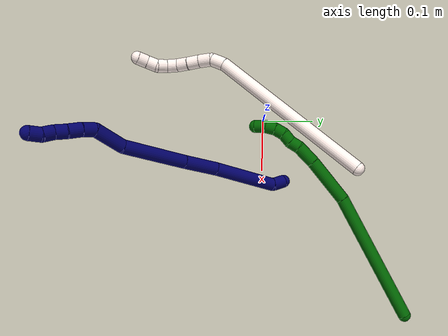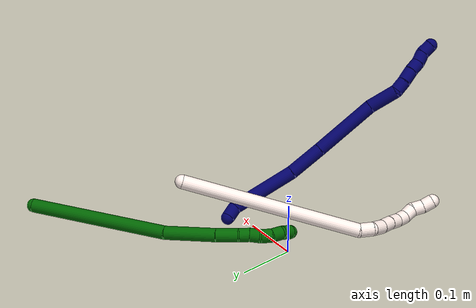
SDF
<sdf version="1.7">
 <world name="default">
  <model name="photoneo_s_sensor">
   <static>1</static>
   <pose>0 0 2 1.57079 1.57079 3.14159</pose>
   <link name="link">
    <inertial><mass>0.1</mass></inertial>
    <sensor name="sensor" type="depth">
     <update_rate>30</update_rate>
     <camera>
      <horizontal_fov>1.22</horizontal_fov>
      <image><width>1920</width><height>1200</height><format>B8G8R8</format></image>
      <clip><near>0.1</near><far>4</far></clip>
      <depth_camera><output>points</output></depth_camera>
     </camera>
     <plugin name="camera_plugin" filename="libgazebo_ros_depth_camera.so">
      <baseline>0.2</baseline>
      <alwaysOn>1</alwaysOn>
      <updateRate>0.0</updateRate>
      <cameraName>camera_ir</cameraName>
      <imageTopicName>/camera/color/image_raw</imageTopicName>
      <cameraInfoTopicName>/camera/color/camera_info</cameraInfoTopicName>
      <depthImageTopicName>/camera/depth/image_raw</depthImageTopicName>
      <depthImageCameraInfoTopicName>/camera/depth/camera_info</depthImageCameraInfoTopicName>
      <pointCloudTopicName>/camera/depth/points</pointCloudTopicName>
      <frameName>fr_optical</frameName>
      <pointCloudCutoff>0.1</pointCloudCutoff>
      <pointCloudCutoffMax>2.0</pointCloudCutoffMax>
      <distortionK1>0</distortionK1>
      <distortionK2>0</distortionK2>
      <distortionK3>0</distortionK3>
      <distortionT1>0</distortionT1>
      <distortionT2>0</distortionT2>
      <CxPrime>0</CxPrime>
      <Cx>0</Cx>
      <Cy>0</Cy>
      <focalLength>0</focalLength>
      <hackBaseline>0</hackBaseline>
     </plugin>
    </sensor>
   </link>
  </model>
  <model name="bin">
   <static>1</static>
   <link name="bottom">
    <collision name="collision-bottom">
     <pose>0 0 -0.01 0 -0 0</pose>
     <geometry><box><size>0.8 0.6 0.02</size></box></geometry>
     <surface>
      <friction><ode><mu>100</mu><mu2>100</mu2></ode></friction>
      <contact><collide_bitmask>65535</collide_bitmask></contact>
     </surface>
    </collision>
   </link>
   <link name="west_wall">
    <collision name="collision-west_wall">
     <pose>-0.41 0 0.1 0 -0 0</pose>
     <geometry><box><size>0.02 0.6 0.2</size></box></geometry>
     <surface>
      <friction><ode><mu>100</mu><mu2>100</mu2></ode></friction>
      <contact><collide_bitmask>65535</collide_bitmask></contact>
     </surface>
    </collision>
   </link>
   <link name="east_wall">
    <collision name="collision-east_wall">
     <pose>0.41 0 0.1 0 -0 0</pose>
     <geometry><box><size>0.02 0.6 0.2</size></box></geometry>
     <surface>
      <friction><ode><mu>100</mu><mu2>100</mu2></ode></friction>
      <contact><collide_bitmask>65535</collide_bitmask></contact>
     </surface>
    </collision>
   </link>
   <link name="south_wall">
    <collision name="collision-south_wall">
     <pose>0 -0.31 0.1 0 -0 0</pose>
     <geometry><box><size>0.8 0.02 0.2</size></box></geometry>
     <surface>
      <friction><ode><mu>100</mu><mu2>100</mu2></ode></friction>
      <contact><collide_bitmask>65535</collide_bitmask></contact>
     </surface>
    </collision>
   </link>
   <link name="north_wall">
    <collision name="collision-north_wall">
     <pose>0 0.31 0.1 0 -0 0</pose>
     <geometry><box><size>0.8 0.02 0.2</size></box></geometry>
     <surface>
      <friction><ode><mu>100</mu><mu2>100</mu2></ode></friction>
      <contact><collide_bitmask>65535</collide_bitmask></contact>
     </surface>
    </collision>
   </link>
  </model>
  <model name="6">
   <static>0</static>
   <link name="6">
    <collision name="collision-cylinder-e_1_1_4">
     <pose>-0.007949 0.004768 -0.132329 -3.10557 -0.059958 2.05987</pose>
     <geometry><cylinder><radius>0.0125</radius><length>0.265306</length></cylinder></geometry>
     <surface>
      <friction><ode><mu>1.16</mu><mu2>1.16</mu2><slip1>0</slip1><slip2>0</slip2></ode></friction>
      <contact><ode><kp>1e+06</kp><kd>1</kd><max_vel>0</max_vel><min_depth>0.001</min_depth></ode></contact>
     </surface>
    </collision>
    <visual name="visual-cylinder-e_1_1_4">
     <pose>-0.007949 0.004768 -0.132329 -3.10557 -0.059958 2.05987</pose>
     <geometry><cylinder><radius>0.0125</radius><length>0.265306</length></cylinder></geometry>
     <material><ambient>0 0.392157 0.003922 1</ambient></material>
    </visual>
    <collision name="collision-cylinder-e_2_4_5">
     <pose>-0.027053 0.00757 -0.310499 3.09871 -0.238501 -2.78741</pose>
     <geometry><cylinder><radius>0.0125</radius><length>0.094439</length></cylinder></geometry>
     <surface>
      <friction><ode><mu>1.16</mu><mu2>1.16</mu2><slip1>0</slip1><slip2>0</slip2></ode></friction>
      <contact><ode><kp>1e+06</kp><kd>1</kd><max_vel>0</max_vel><min_depth>0.001</min_depth></ode></contact>
     </surface>
    </collision>
    <visual name="visual-cylinder-e_2_4_5">
     <pose>-0.027053 0.00757 -0.310499 3.09871 -0.238501 -2.78741</pose>
     <geometry><cylinder><radius>0.0125</radius><length>0.094439</length></cylinder></geometry>
     <material><ambient>0 0.392157 0.003922 1</ambient></material>
    </visual>
    <collision name="collision-cylinder-e_3_5_6">
     <pose>-0.044095 0.003461 -0.375305 3.02916 -0.299141 -2.42677</pose>
     <geometry><cylinder><radius>0.0125</radius><length>0.039946</length></cylinder></geometry>
     <surface>
      <friction><ode><mu>1.16</mu><mu2>1.16</mu2><slip1>0</slip1><slip2>0</slip2></ode></friction>
      <contact><ode><kp>1e+06</kp><kd>1</kd><max_vel>0</max_vel><min_depth>0.001</min_depth></ode></contact>
     </surface>
    </collision>
    <visual name="visual-cylinder-e_3_5_6">
     <pose>-0.044095 0.003461 -0.375305 3.02916 -0.299141 -2.42677</pose>
     <geometry><cylinder><radius>0.0125</radius><length>0.039946</length></cylinder></geometry>
     <material><ambient>0 0.392157 0.003922 1</ambient></material>
    </visual>
    <collision name="collision-cylinder-e_4_6_7">
     <pose>-0.053967 -0.001955 -0.40286 2.77741 -0.409219 -1.69005</pose>
     <geometry><cylinder><radius>0.0125</radius><length>0.02004</length></cylinder></geometry>
     <surface>
      <friction><ode><mu>1.16</mu><mu2>1.16</mu2><slip1>0</slip1><slip2>0</slip2></ode></friction>
      <contact><ode><kp>1e+06</kp><kd>1</kd><max_vel>0</max_vel><min_depth>0.001</min_depth></ode></contact>
     </surface>
    </collision>
    <visual name="visual-cylinder-e_4_6_7">
     <pose>-0.053967 -0.001955 -0.40286 2.77741 -0.409219 -1.69005</pose>
     <geometry><cylinder><radius>0.0125</radius><length>0.02004</length></cylinder></geometry>
     <material><ambient>0 0.392157 0.003922 1</ambient></material>
    </visual>
    <collision name="collision-cylinder-e_5_7_8">
     <pose>-0.059712 -0.006402 -0.421255 3.02256 -0.176104 -1.9541</pose>
     <geometry><cylinder><radius>0.0125</radius><length>0.020061</length></cylinder></geometry>
     <surface>
      <friction><ode><mu>1.16</mu><mu2>1.16</mu2><slip1>0</slip1><slip2>0</slip2></ode></friction>
      <contact><ode><kp>1e+06</kp><kd>1</kd><max_vel>0</max_vel><min_depth>0.001</min_depth></ode></contact>
     </surface>
    </collision>
    <visual name="visual-cylinder-e_5_7_8">
     <pose>-0.059712 -0.006402 -0.421255 3.02256 -0.176104 -1.9541</pose>
     <geometry><cylinder><radius>0.0125</radius><length>0.020061</length></cylinder></geometry>
     <material><ambient>0 0.392157 0.003922 1</ambient></material>
    </visual>
    <collision name="collision-cylinder-e_6_8_9">
     <pose>-0.065665 -0.011068 -0.439514 2.74967 -0.430106 -1.66628</pose>
     <geometry><cylinder><radius>0.0125</radius><length>0.020127</length></cylinder></geometry>
     <surface>
      <friction><ode><mu>1.16</mu><mu2>1.16</mu2><slip1>0</slip1><slip2>0</slip2></ode></friction>
      <contact><ode><kp>1e+06</kp><kd>1</kd><max_vel>0</max_vel><min_depth>0.001</min_depth></ode></contact>
     </surface>
    </collision>
    <visual name="visual-cylinder-e_6_8_9">
     <pose>-0.065665 -0.011068 -0.439514 2.74967 -0.430106 -1.66628</pose>
     <geometry><cylinder><radius>0.0125</radius><length>0.020127</length></cylinder></geometry>
     <material><ambient>0 0.392157 0.003922 1</ambient></material>
    </visual>
    <collision name="collision-cylinder-e_7_9_10">
     <pose>-0.075984 -0.018987 -0.454529 2.54825 -0.658432 -1.68178</pose>
     <geometry><cylinder><radius>0.0125</radius><length>0.020011</length></cylinder></geometry>
     <surface>
      <friction><ode><mu>1.16</mu><mu2>1.16</mu2><slip1>0</slip1><slip2>0</slip2></ode></friction>
      <contact><ode><kp>1e+06</kp><kd>1</kd><max_vel>0</max_vel><min_depth>0.001</min_depth></ode></contact>
     </surface>
    </collision>
    <visual name="visual-cylinder-e_7_9_10">
     <pose>-0.075984 -0.018987 -0.454529 2.54825 -0.658432 -1.68178</pose>
     <geometry><cylinder><radius>0.0125</radius><length>0.020011</length></cylinder></geometry>
     <material><ambient>0 0.392157 0.003922 1</ambient></material>
    </visual>
    <collision name="collision-cylinder-e_8_10_2">
     <pose>-0.086731 -0.031048 -0.465671 2.11115 -0.479086 -0.814434</pose>
     <geometry><cylinder><radius>0.0125</radius><length>0.020069</length></cylinder></geometry>
     <surface>
      <friction><ode><mu>1.16</mu><mu2>1.16</mu2><slip1>0</slip1><slip2>0</slip2></ode></friction>
      <contact><ode><kp>1e+06</kp><kd>1</kd><max_vel>0</max_vel><min_depth>0.001</min_depth></ode></contact>
     </surface>
    </collision>
    <visual name="visual-cylinder-e_8_10_2">
     <pose>-0.086731 -0.031048 -0.465671 2.11115 -0.479086 -0.814434</pose>
     <geometry><cylinder><radius>0.0125</radius><length>0.020069</length></cylinder></geometry>
     <material><ambient>0 0.392157 0.003922 1</ambient></material>
    </visual>
    <collision name="collision-sphere-2">
     <pose>-0.091357 -0.038684 -0.470252 0 -0 0</pose>
     <geometry><sphere><radius>0.0125</radius></sphere></geometry>
     <surface>
      <friction><ode><mu>1.16</mu><mu2>1.16</mu2><slip1>0</slip1><slip2>0</slip2></ode></friction>
      <contact><ode><kp>1e+06</kp><kd>1</kd><max_vel>0</max_vel><min_depth>0.001</min_depth></ode></contact>
     </surface>
    </collision>
    <visual name="visual-sphere-2">
     <pose>-0.091357 -0.038684 -0.470252 0 -0 0</pose>
     <geometry><sphere><radius>0.0125</radius></sphere></geometry>
     <material><ambient>0 0.392157 0.003922 1</ambient></material>
    </visual>
    <collision name="collision-sphere-10">
     <pose>-0.082106 -0.023412 -0.46109 0 -0 0</pose>
     <geometry><sphere><radius>0.0125</radius></sphere></geometry>
     <surface>
      <friction><ode><mu>1.16</mu><mu2>1.16</mu2><slip1>0</slip1><slip2>0</slip2></ode></friction>
      <contact><ode><kp>1e+06</kp><kd>1</kd><max_vel>0</max_vel><min_depth>0.001</min_depth></ode></contact>
     </surface>
    </collision>
    <visual name="visual-sphere-10">
     <pose>-0.082106 -0.023412 -0.46109 0 -0 0</pose>
     <geometry><sphere><radius>0.0125</radius></sphere></geometry>
     <material><ambient>0 0.392157 0.003922 1</ambient></material>
    </visual>
    <collision name="collision-sphere-9">
     <pose>-0.069861 -0.014562 -0.447968 0 -0 0</pose>
     <geometry><sphere><radius>0.0125</radius></sphere></geometry>
     <surface>
      <friction><ode><mu>1.16</mu><mu2>1.16</mu2><slip1>0</slip1><slip2>0</slip2></ode></friction>
      <contact><ode><kp>1e+06</kp><kd>1</kd><max_vel>0</max_vel><min_depth>0.001</min_depth></ode></contact>
     </surface>
    </collision>
    <visual name="visual-sphere-9">
     <pose>-0.069861 -0.014562 -0.447968 0 -0 0</pose>
     <geometry><sphere><radius>0.0125</radius></sphere></geometry>
     <material><ambient>0 0.392157 0.003922 1</ambient></material>
    </visual>
    <collision name="collision-sphere-4">
     <pose>-0.015898 0.009536 -0.264658 0 -0 0</pose>
     <geometry><sphere><radius>0.0125</radius></sphere></geometry>
     <surface>
      <friction><ode><mu>1.16</mu><mu2>1.16</mu2><slip1>0</slip1><slip2>0</slip2></ode></friction>
      <contact><ode><kp>1e+06</kp><kd>1</kd><max_vel>0</max_vel><min_depth>0.001</min_depth></ode></contact>
     </surface>
    </collision>
    <visual name="visual-sphere-4">
     <pose>-0.015898 0.009536 -0.264658 0 -0 0</pose>
     <geometry><sphere><radius>0.0125</radius></sphere></geometry>
     <material><ambient>0 0.392157 0.003922 1</ambient></material>
    </visual>
    <collision name="collision-sphere-1">
     <geometry><sphere><radius>0.0125</radius></sphere></geometry>
     <surface>
      <friction><ode><mu>1.16</mu><mu2>1.16</mu2><slip1>0</slip1><slip2>0</slip2></ode></friction>
      <contact><ode><kp>1e+06</kp><kd>1</kd><max_vel>0</max_vel><min_depth>0.001</min_depth></ode></contact>
     </surface>
    </collision>
    <visual name="visual-sphere-1">
     <geometry><sphere><radius>0.0125</radius></sphere></geometry>
     <material><ambient>0 0.392157 0.003922 1</ambient></material>
    </visual>
    <collision name="collision-sphere-8">
     <pose>-0.061469 -0.007574 -0.43106 0 -0 0</pose>
     <geometry><sphere><radius>0.0125</radius></sphere></geometry>
     <surface>
      <friction><ode><mu>1.16</mu><mu2>1.16</mu2><slip1>0</slip1><slip2>0</slip2></ode></friction>
      <contact><ode><kp>1e+06</kp><kd>1</kd><max_vel>0</max_vel><min_depth>0.001</min_depth></ode></contact>
     </surface>
    </collision>
    <visual name="visual-sphere-8">
     <pose>-0.061469 -0.007574 -0.43106 0 -0 0</pose>
     <geometry><sphere><radius>0.0125</radius></sphere></geometry>
     <material><ambient>0 0.392157 0.003922 1</ambient></material>
    </visual>
    <collision name="collision-sphere-5">
     <pose>-0.038209 0.005603 -0.356339 0 -0 0</pose>
     <geometry><sphere><radius>0.0125</radius></sphere></geometry>
     <surface>
      <friction><ode><mu>1.16</mu><mu2>1.16</mu2><slip1>0</slip1><slip2>0</slip2></ode></friction>
      <contact><ode><kp>1e+06</kp><kd>1</kd><max_vel>0</max_vel><min_depth>0.001</min_depth></ode></contact>
     </surface>
    </collision>
    <visual name="visual-sphere-5">
     <pose>-0.038209 0.005603 -0.356339 0 -0 0</pose>
     <geometry><sphere><radius>0.0125</radius></sphere></geometry>
     <material><ambient>0 0.392157 0.003922 1</ambient></material>
    </visual>
    <collision name="collision-sphere-6">
     <pose>-0.04998 0.00132 -0.39427 0 -0 0</pose>
     <geometry><sphere><radius>0.0125</radius></sphere></geometry>
     <surface>
      <friction><ode><mu>1.16</mu><mu2>1.16</mu2><slip1>0</slip1><slip2>0</slip2></ode></friction>
      <contact><ode><kp>1e+06</kp><kd>1</kd><max_vel>0</max_vel><min_depth>0.001</min_depth></ode></contact>
     </surface>
    </collision>
    <visual name="visual-sphere-6">
     <pose>-0.04998 0.00132 -0.39427 0 -0 0</pose>
     <geometry><sphere><radius>0.0125</radius></sphere></geometry>
     <material><ambient>0 0.392157 0.003922 1</ambient></material>
    </visual>
    <collision name="collision-sphere-7">
     <pose>-0.057954 -0.005229 -0.41145 0 -0 0</pose>
     <geometry><sphere><radius>0.0125</radius></sphere></geometry>
     <surface>
      <friction><ode><mu>1.16</mu><mu2>1.16</mu2><slip1>0</slip1><slip2>0</slip2></ode></friction>
      <contact><ode><kp>1e+06</kp><kd>1</kd><max_vel>0</max_vel><min_depth>0.001</min_depth></ode></contact>
     </surface>
    </collision>
    <visual name="visual-sphere-7">
     <pose>-0.057954 -0.005229 -0.41145 0 -0 0</pose>
     <geometry><sphere><radius>0.0125</radius></sphere></geometry>
     <material><ambient>0 0.392157 0.003922 1</ambient></material>
    </visual>
    <inertial>
     <pose>-0.026575 0.001449 -0.246469 0 -0 0</pose>
     <mass>0.5</mass>
     <inertia><ixx>0.000531</ixx><ixy>0</ixy><ixz>0</ixz><iyy>0.002157</iyy><iyz>0</iyz><izz>3e-05</izz></inertia>
    </inertial>
   </link>
   <pose>0.385543 0.288509 0.012323 1.5516 0.643133 2.04289</pose>
  </model>
  <model name="7">
   <static>0</static>
   <link name="7">
    <collision name="collision-cylinder-e_1_1_4">
     <pose>-0.000534 -0.00692 -0.010148 2.54308 -0.04343 -0.140558</pose>
     <geometry><cylinder><radius>0.0125</radius><length>0.024589</length></cylinder></geometry>
     <surface>
      <friction><ode><mu>1.16</mu><mu2>1.16</mu2><slip1>0</slip1><slip2>0</slip2></ode></friction>
      <contact><ode><kp>1e+06</kp><kd>1</kd><max_vel>0</max_vel><min_depth>0.001</min_depth></ode></contact>
     </surface>
    </collision>
    <visual name="visual-cylinder-e_1_1_4">
     <pose>-0.000534 -0.00692 -0.010148 2.54308 -0.04343 -0.140558</pose>
     <geometry><cylinder><radius>0.0125</radius><length>0.024589</length></cylinder></geometry>
     <material><ambient>0.003922 0 0.403922 1</ambient></material>
    </visual>
    <collision name="collision-cylinder-e_2_4_5">
     <pose>-0.032696 -0.049436 -0.058652 2.39352 -0.543674 -1.23498</pose>
     <geometry><cylinder><radius>0.0125</radius><length>0.122288</length></cylinder></geometry>
     <surface>
      <friction><ode><mu>1.16</mu><mu2>1.16</mu2><slip1>0</slip1><slip2>0</slip2></ode></friction>
      <contact><ode><kp>1e+06</kp><kd>1</kd><max_vel>0</max_vel><min_depth>0.001</min_depth></ode></contact>
     </surface>
    </collision>
    <visual name="visual-cylinder-e_2_4_5">
     <pose>-0.032696 -0.049436 -0.058652 2.39352 -0.543674 -1.23498</pose>
     <geometry><cylinder><radius>0.0125</radius><length>0.122288</length></cylinder></geometry>
     <material><ambient>0.003922 0 0.403922 1</ambient></material>
    </visual>
    <collision name="collision-cylinder-e_3_5_6">
     <pose>-0.078484 -0.107855 -0.116606 2.28029 -0.439885 -0.905771</pose>
     <geometry><cylinder><radius>0.0125</radius><length>0.066496</length></cylinder></geometry>
     <surface>
      <friction><ode><mu>1.16</mu><mu2>1.16</mu2><slip1>0</slip1><slip2>0</slip2></ode></friction>
      <contact><ode><kp>1e+06</kp><kd>1</kd><max_vel>0</max_vel><min_depth>0.001</min_depth></ode></contact>
     </surface>
    </collision>
    <visual name="visual-cylinder-e_3_5_6">
     <pose>-0.078484 -0.107855 -0.116606 2.28029 -0.439885 -0.905771</pose>
     <geometry><cylinder><radius>0.0125</radius><length>0.066496</length></cylinder></geometry>
     <material><ambient>0.003922 0 0.403922 1</ambient></material>
    </visual>
    <collision name="collision-cylinder-e_4_6_7">
     <pose>-0.118357 -0.174119 -0.169591 2.22608 -0.438832 -0.850132</pose>
     <geometry><cylinder><radius>0.0125</radius><length>0.121048</length></cylinder></geometry>
     <surface>
      <friction><ode><mu>1.16</mu><mu2>1.16</mu2><slip1>0</slip1><slip2>0</slip2></ode></friction>
      <contact><ode><kp>1e+06</kp><kd>1</kd><max_vel>0</max_vel><min_depth>0.001</min_depth></ode></contact>
     </surface>
    </collision>
    <visual name="visual-cylinder-e_4_6_7">
     <pose>-0.118357 -0.174119 -0.169591 2.22608 -0.438832 -0.850132</pose>
     <geometry><cylinder><radius>0.0125</radius><length>0.121048</length></cylinder></geometry>
     <material><ambient>0.003922 0 0.403922 1</ambient></material>
    </visual>
    <collision name="collision-cylinder-e_5_7_8">
     <pose>-0.161377 -0.237235 -0.2124 2.01735 -0.670613 -1.01059</pose>
     <geometry><cylinder><radius>0.0125</radius><length>0.055688</length></cylinder></geometry>
     <surface>
      <friction><ode><mu>1.16</mu><mu2>1.16</mu2><slip1>0</slip1><slip2>0</slip2></ode></friction>
      <contact><ode><kp>1e+06</kp><kd>1</kd><max_vel>0</max_vel><min_depth>0.001</min_depth></ode></contact>
     </surface>
    </collision>
    <visual name="visual-cylinder-e_5_7_8">
     <pose>-0.161377 -0.237235 -0.2124 2.01735 -0.670613 -1.01059</pose>
     <geometry><cylinder><radius>0.0125</radius><length>0.055688</length></cylinder></geometry>
     <material><ambient>0.003922 0 0.403922 1</ambient></material>
    </visual>
    <collision name="collision-cylinder-e_6_8_9">
     <pose>-0.181222 -0.265265 -0.229223 2.29584 -0.223788 -0.489359</pose>
     <geometry><cylinder><radius>0.0125</radius><length>0.022895</length></cylinder></geometry>
     <surface>
      <friction><ode><mu>1.16</mu><mu2>1.16</mu2><slip1>0</slip1><slip2>0</slip2></ode></friction>
      <contact><ode><kp>1e+06</kp><kd>1</kd><max_vel>0</max_vel><min_depth>0.001</min_depth></ode></contact>
     </surface>
    </collision>
    <visual name="visual-cylinder-e_6_8_9">
     <pose>-0.181222 -0.265265 -0.229223 2.29584 -0.223788 -0.489359</pose>
     <geometry><cylinder><radius>0.0125</radius><length>0.022895</length></cylinder></geometry>
     <material><ambient>0.003922 0 0.403922 1</ambient></material>
    </visual>
    <collision name="collision-cylinder-e_7_9_10">
     <pose>-0.184935 -0.282057 -0.245329 2.37176 -0.096417 -0.237061</pose>
     <geometry><cylinder><radius>0.0125</radius><length>0.024358</length></cylinder></geometry>
     <surface>
      <friction><ode><mu>1.16</mu><mu2>1.16</mu2><slip1>0</slip1><slip2>0</slip2></ode></friction>
      <contact><ode><kp>1e+06</kp><kd>1</kd><max_vel>0</max_vel><min_depth>0.001</min_depth></ode></contact>
     </surface>
    </collision>
    <visual name="visual-cylinder-e_7_9_10">
     <pose>-0.184935 -0.282057 -0.245329 2.37176 -0.096417 -0.237061</pose>
     <geometry><cylinder><radius>0.0125</radius><length>0.024358</length></cylinder></geometry>
     <material><ambient>0.003922 0 0.403922 1</ambient></material>
    </visual>
    <collision name="collision-cylinder-e_8_10_11">
     <pose>-0.188149 -0.296957 -0.26204 2.46248 -0.195862 -0.542546</pose>
     <geometry><cylinder><radius>0.0125</radius><length>0.020982</length></cylinder></geometry>
     <surface>
      <friction><ode><mu>1.16</mu><mu2>1.16</mu2><slip1>0</slip1><slip2>0</slip2></ode></friction>
      <contact><ode><kp>1e+06</kp><kd>1</kd><max_vel>0</max_vel><min_depth>0.001</min_depth></ode></contact>
     </surface>
    </collision>
    <visual name="visual-cylinder-e_8_10_11">
     <pose>-0.188149 -0.296957 -0.26204 2.46248 -0.195862 -0.542546</pose>
     <geometry><cylinder><radius>0.0125</radius><length>0.020982</length></cylinder></geometry>
     <material><ambient>0.003922 0 0.403922 1</ambient></material>
    </visual>
    <collision name="collision-cylinder-e_9_11_12">
     <pose>-0.190048 -0.311028 -0.276867 2.30161 0.013992 0.03133</pose>
     <geometry><cylinder><radius>0.0125</radius><length>0.020436</length></cylinder></geometry>
     <surface>
      <friction><ode><mu>1.16</mu><mu2>1.16</mu2><slip1>0</slip1><slip2>0</slip2></ode></friction>
      <contact><ode><kp>1e+06</kp><kd>1</kd><max_vel>0</max_vel><min_depth>0.001</min_depth></ode></contact>
     </surface>
    </collision>
    <visual name="visual-cylinder-e_9_11_12">
     <pose>-0.190048 -0.311028 -0.276867 2.30161 0.013992 0.03133</pose>
     <geometry><cylinder><radius>0.0125</radius><length>0.020436</length></cylinder></geometry>
     <material><ambient>0.003922 0 0.403922 1</ambient></material>
    </visual>
    <collision name="collision-cylinder-e_10_12_2">
     <pose>-0.193433 -0.326148 -0.290297 2.29247 -0.338993 -0.723809</pose>
     <geometry><cylinder><radius>0.0125</radius><length>0.02122</length></cylinder></geometry>
     <surface>
      <friction><ode><mu>1.16</mu><mu2>1.16</mu2><slip1>0</slip1><slip2>0</slip2></ode></friction>
      <contact><ode><kp>1e+06</kp><kd>1</kd><max_vel>0</max_vel><min_depth>0.001</min_depth></ode></contact>
     </surface>
    </collision>
    <visual name="visual-cylinder-e_10_12_2">
     <pose>-0.193433 -0.326148 -0.290297 2.29247 -0.338993 -0.723809</pose>
     <geometry><cylinder><radius>0.0125</radius><length>0.02122</length></cylinder></geometry>
     <material><ambient>0.003922 0 0.403922 1</ambient></material>
    </visual>
    <collision name="collision-sphere-2">
     <pose>-0.196961 -0.33366 -0.296907 0 -0 0</pose>
     <geometry><sphere><radius>0.0125</radius></sphere></geometry>
     <surface>
      <friction><ode><mu>1.16</mu><mu2>1.16</mu2><slip1>0</slip1><slip2>0</slip2></ode></friction>
      <contact><ode><kp>1e+06</kp><kd>1</kd><max_vel>0</max_vel><min_depth>0.001</min_depth></ode></contact>
     </surface>
    </collision>
    <visual name="visual-sphere-2">
     <pose>-0.196961 -0.33366 -0.296907 0 -0 0</pose>
     <geometry><sphere><radius>0.0125</radius></sphere></geometry>
     <material><ambient>0.003922 0 0.403922 1</ambient></material>
    </visual>
    <collision name="collision-sphere-12">
     <pose>-0.189905 -0.318636 -0.283686 0 -0 0</pose>
     <geometry><sphere><radius>0.0125</radius></sphere></geometry>
     <surface>
      <friction><ode><mu>1.16</mu><mu2>1.16</mu2><slip1>0</slip1><slip2>0</slip2></ode></friction>
      <contact><ode><kp>1e+06</kp><kd>1</kd><max_vel>0</max_vel><min_depth>0.001</min_depth></ode></contact>
     </surface>
    </collision>
    <visual name="visual-sphere-12">
     <pose>-0.189905 -0.318636 -0.283686 0 -0 0</pose>
     <geometry><sphere><radius>0.0125</radius></sphere></geometry>
     <material><ambient>0.003922 0 0.403922 1</ambient></material>
    </visual>
    <collision name="collision-sphere-11">
     <pose>-0.190191 -0.30342 -0.270047 0 -0 0</pose>
     <geometry><sphere><radius>0.0125</radius></sphere></geometry>
     <surface>
      <friction><ode><mu>1.16</mu><mu2>1.16</mu2><slip1>0</slip1><slip2>0</slip2></ode></friction>
      <contact><ode><kp>1e+06</kp><kd>1</kd><max_vel>0</max_vel><min_depth>0.001</min_depth></ode></contact>
     </surface>
    </collision>
    <visual name="visual-sphere-11">
     <pose>-0.190191 -0.30342 -0.270047 0 -0 0</pose>
     <geometry><sphere><radius>0.0125</radius></sphere></geometry>
     <material><ambient>0.003922 0 0.403922 1</ambient></material>
    </visual>
    <collision name="collision-sphere-10">
     <pose>-0.186107 -0.290494 -0.254033 0 -0 0</pose>
     <geometry><sphere><radius>0.0125</radius></sphere></geometry>
     <surface>
      <friction><ode><mu>1.16</mu><mu2>1.16</mu2><slip1>0</slip1><slip2>0</slip2></ode></friction>
      <contact><ode><kp>1e+06</kp><kd>1</kd><max_vel>0</max_vel><min_depth>0.001</min_depth></ode></contact>
     </surface>
    </collision>
    <visual name="visual-sphere-10">
     <pose>-0.186107 -0.290494 -0.254033 0 -0 0</pose>
     <geometry><sphere><radius>0.0125</radius></sphere></geometry>
     <material><ambient>0.003922 0 0.403922 1</ambient></material>
    </visual>
    <collision name="collision-sphere-9">
     <pose>-0.183762 -0.273619 -0.236625 0 -0 0</pose>
     <geometry><sphere><radius>0.0125</radius></sphere></geometry>
     <surface>
      <friction><ode><mu>1.16</mu><mu2>1.16</mu2><slip1>0</slip1><slip2>0</slip2></ode></friction>
      <contact><ode><kp>1e+06</kp><kd>1</kd><max_vel>0</max_vel><min_depth>0.001</min_depth></ode></contact>
     </surface>
    </collision>
    <visual name="visual-sphere-9">
     <pose>-0.183762 -0.273619 -0.236625 0 -0 0</pose>
     <geometry><sphere><radius>0.0125</radius></sphere></geometry>
     <material><ambient>0.003922 0 0.403922 1</ambient></material>
    </visual>
    <collision name="collision-sphere-4">
     <pose>-0.001068 -0.01384 -0.020295 0 -0 0</pose>
     <geometry><sphere><radius>0.0125</radius></sphere></geometry>
     <surface>
      <friction><ode><mu>1.16</mu><mu2>1.16</mu2><slip1>0</slip1><slip2>0</slip2></ode></friction>
      <contact><ode><kp>1e+06</kp><kd>1</kd><max_vel>0</max_vel><min_depth>0.001</min_depth></ode></contact>
     </surface>
    </collision>
    <visual name="visual-sphere-4">
     <pose>-0.001068 -0.01384 -0.020295 0 -0 0</pose>
     <geometry><sphere><radius>0.0125</radius></sphere></geometry>
     <material><ambient>0.003922 0 0.403922 1</ambient></material>
    </visual>
    <collision name="collision-sphere-1">
     <geometry><sphere><radius>0.0125</radius></sphere></geometry>
     <surface>
      <friction><ode><mu>1.16</mu><mu2>1.16</mu2><slip1>0</slip1><slip2>0</slip2></ode></friction>
      <contact><ode><kp>1e+06</kp><kd>1</kd><max_vel>0</max_vel><min_depth>0.001</min_depth></ode></contact>
     </surface>
    </collision>
    <visual name="visual-sphere-1">
     <geometry><sphere><radius>0.0125</radius></sphere></geometry>
     <material><ambient>0.003922 0 0.403922 1</ambient></material>
    </visual>
    <collision name="collision-sphere-8">
     <pose>-0.178682 -0.256911 -0.22182 0 -0 0</pose>
     <geometry><sphere><radius>0.0125</radius></sphere></geometry>
     <surface>
      <friction><ode><mu>1.16</mu><mu2>1.16</mu2><slip1>0</slip1><slip2>0</slip2></ode></friction>
      <contact><ode><kp>1e+06</kp><kd>1</kd><max_vel>0</max_vel><min_depth>0.001</min_depth></ode></contact>
     </surface>
    </collision>
    <visual name="visual-sphere-8">
     <pose>-0.178682 -0.256911 -0.22182 0 -0 0</pose>
     <geometry><sphere><radius>0.0125</radius></sphere></geometry>
     <material><ambient>0.003922 0 0.403922 1</ambient></material>
    </visual>
    <collision name="collision-sphere-5">
     <pose>-0.064325 -0.085031 -0.097008 0 -0 0</pose>
     <geometry><sphere><radius>0.0125</radius></sphere></geometry>
     <surface>
      <friction><ode><mu>1.16</mu><mu2>1.16</mu2><slip1>0</slip1><slip2>0</slip2></ode></friction>
      <contact><ode><kp>1e+06</kp><kd>1</kd><max_vel>0</max_vel><min_depth>0.001</min_depth></ode></contact>
     </surface>
    </collision>
    <visual name="visual-sphere-5">
     <pose>-0.064325 -0.085031 -0.097008 0 -0 0</pose>
     <geometry><sphere><radius>0.0125</radius></sphere></geometry>
     <material><ambient>0.003922 0 0.403922 1</ambient></material>
    </visual>
    <collision name="collision-sphere-6">
     <pose>-0.092642 -0.130678 -0.136203 0 -0 0</pose>
     <geometry><sphere><radius>0.0125</radius></sphere></geometry>
     <surface>
      <friction><ode><mu>1.16</mu><mu2>1.16</mu2><slip1>0</slip1><slip2>0</slip2></ode></friction>
      <contact><ode><kp>1e+06</kp><kd>1</kd><max_vel>0</max_vel><min_depth>0.001</min_depth></ode></contact>
     </surface>
    </collision>
    <visual name="visual-sphere-6">
     <pose>-0.092642 -0.130678 -0.136203 0 -0 0</pose>
     <geometry><sphere><radius>0.0125</radius></sphere></geometry>
     <material><ambient>0.003922 0 0.403922 1</ambient></material>
    </visual>
    <collision name="collision-sphere-7">
     <pose>-0.144073 -0.21756 -0.202979 0 -0 0</pose>
     <geometry><sphere><radius>0.0125</radius></sphere></geometry>
     <surface>
      <friction><ode><mu>1.16</mu><mu2>1.16</mu2><slip1>0</slip1><slip2>0</slip2></ode></friction>
      <contact><ode><kp>1e+06</kp><kd>1</kd><max_vel>0</max_vel><min_depth>0.001</min_depth></ode></contact>
     </surface>
    </collision>
    <visual name="visual-sphere-7">
     <pose>-0.144073 -0.21756 -0.202979 0 -0 0</pose>
     <geometry><sphere><radius>0.0125</radius></sphere></geometry>
     <material><ambient>0.003922 0 0.403922 1</ambient></material>
    </visual>
    <inertial>
     <pose>-0.106268 -0.160253 -0.152145 0 -0 0</pose>
     <mass>0.5</mass>
     <inertia>
      <ixx>-0.000113</ixx>
      <ixy>0</ixy>
      <ixz>0</ixz>
      <iyy>-0.000306</iyy>
      <iyz>0</iyz>
      <izz>0.000385</izz>
     </inertia>
    </inertial>
   </link>
   <pose>0.121063 0.041612 0.024788 -1.36496 -0.127894 0.414051</pose>
  </model>
  <model name="11">
   <static>0</static>
   <link name="11">
    <collision name="collision-cylinder-e_1_1_4">
     <pose>-0.041229 -0.003867 -0.156797 3.11693 -0.257051 -2.95136</pose>
     <geometry><cylinder><radius>0.0125</radius><length>0.324346</length></cylinder></geometry>
     <surface>
      <friction><ode><mu>1.16</mu><mu2>1.16</mu2><slip1>0</slip1><slip2>0</slip2></ode></friction>
      <contact><ode><kp>1e+06</kp><kd>1</kd><max_vel>0</max_vel><min_depth>0.001</min_depth></ode></contact>
     </surface>
    </collision>
    <visual name="visual-cylinder-e_1_1_4">
     <pose>-0.041229 -0.003867 -0.156797 3.11693 -0.257051 -2.95136</pose>
     <geometry><cylinder><radius>0.0125</radius><length>0.324346</length></cylinder></geometry>
     <material><ambient>1 0.933333 0.909804 1</ambient></material>
    </visual>
    <collision name="collision-cylinder-e_2_4_5">
     <pose>-0.084759 -0.012936 -0.325348 2.72495 -0.177139 -0.795403</pose>
     <geometry><cylinder><radius>0.0125</radius><length>0.026116</length></cylinder></geometry>
     <surface>
      <friction><ode><mu>1.16</mu><mu2>1.16</mu2><slip1>0</slip1><slip2>0</slip2></ode></friction>
      <contact><ode><kp>1e+06</kp><kd>1</kd><max_vel>0</max_vel><min_depth>0.001</min_depth></ode></contact>
     </surface>
    </collision>
    <visual name="visual-cylinder-e_2_4_5">
     <pose>-0.084759 -0.012936 -0.325348 2.72495 -0.177139 -0.795403</pose>
     <geometry><cylinder><radius>0.0125</radius><length>0.026116</length></cylinder></geometry>
     <material><ambient>1 0.933333 0.909804 1</ambient></material>
    </visual>
    <collision name="collision-cylinder-e_3_5_6">
     <pose>-0.083434 -0.024133 -0.347284 2.60949 0.297728 1.00621</pose>
     <geometry><cylinder><radius>0.0125</radius><length>0.02472</length></cylinder></geometry>
     <surface>
      <friction><ode><mu>1.16</mu><mu2>1.16</mu2><slip1>0</slip1><slip2>0</slip2></ode></friction>
      <contact><ode><kp>1e+06</kp><kd>1</kd><max_vel>0</max_vel><min_depth>0.001</min_depth></ode></contact>
     </surface>
    </collision>
    <visual name="visual-cylinder-e_3_5_6">
     <pose>-0.083434 -0.024133 -0.347284 2.60949 0.297728 1.00621</pose>
     <geometry><cylinder><radius>0.0125</radius><length>0.02472</length></cylinder></geometry>
     <material><ambient>1 0.933333 0.909804 1</ambient></material>
    </visual>
    <collision name="collision-cylinder-e_4_6_7">
     <pose>-0.076444 -0.037104 -0.366033 2.45818 0.295633 0.792995</pose>
     <geometry><cylinder><radius>0.0125</radius><length>0.023097</length></cylinder></geometry>
     <surface>
      <friction><ode><mu>1.16</mu><mu2>1.16</mu2><slip1>0</slip1><slip2>0</slip2></ode></friction>
      <contact><ode><kp>1e+06</kp><kd>1</kd><max_vel>0</max_vel><min_depth>0.001</min_depth></ode></contact>
     </surface>
    </collision>
    <visual name="visual-cylinder-e_4_6_7">
     <pose>-0.076444 -0.037104 -0.366033 2.45818 0.295633 0.792995</pose>
     <geometry><cylinder><radius>0.0125</radius><length>0.023097</length></cylinder></geometry>
     <material><ambient>1 0.933333 0.909804 1</ambient></material>
    </visual>
    <collision name="collision-cylinder-e_5_7_8">
     <pose>-0.069851 -0.049731 -0.383103 2.55497 0.306214 0.944717</pose>
     <geometry><cylinder><radius>0.0125</radius><length>0.021416</length></cylinder></geometry>
     <surface>
      <friction><ode><mu>1.16</mu><mu2>1.16</mu2><slip1>0</slip1><slip2>0</slip2></ode></friction>
      <contact><ode><kp>1e+06</kp><kd>1</kd><max_vel>0</max_vel><min_depth>0.001</min_depth></ode></contact>
     </surface>
    </collision>
    <visual name="visual-cylinder-e_5_7_8">
     <pose>-0.069851 -0.049731 -0.383103 2.55497 0.306214 0.944717</pose>
     <geometry><cylinder><radius>0.0125</radius><length>0.021416</length></cylinder></geometry>
     <material><ambient>1 0.933333 0.909804 1</ambient></material>
    </visual>
    <collision name="collision-cylinder-e_6_8_9">
     <pose>-0.065125 -0.061911 -0.399094 2.42457 0.149662 0.394946</pose>
     <geometry><cylinder><radius>0.0125</radius><length>0.020092</length></cylinder></geometry>
     <surface>
      <friction><ode><mu>1.16</mu><mu2>1.16</mu2><slip1>0</slip1><slip2>0</slip2></ode></friction>
      <contact><ode><kp>1e+06</kp><kd>1</kd><max_vel>0</max_vel><min_depth>0.001</min_depth></ode></contact>
     </surface>
    </collision>
    <visual name="visual-cylinder-e_6_8_9">
     <pose>-0.065125 -0.061911 -0.399094 2.42457 0.149662 0.394946</pose>
     <geometry><cylinder><radius>0.0125</radius><length>0.020092</length></cylinder></geometry>
     <material><ambient>1 0.933333 0.909804 1</ambient></material>
    </visual>
    <collision name="collision-cylinder-e_7_9_10">
     <pose>-0.064663 -0.076919 -0.411809 2.1232 -0.10357 -0.185144</pose>
     <geometry><cylinder><radius>0.0125</radius><length>0.020031</length></cylinder></geometry>
     <surface>
      <friction><ode><mu>1.16</mu><mu2>1.16</mu2><slip1>0</slip1><slip2>0</slip2></ode></friction>
      <contact><ode><kp>1e+06</kp><kd>1</kd><max_vel>0</max_vel><min_depth>0.001</min_depth></ode></contact>
     </surface>
    </collision>
    <visual name="visual-cylinder-e_7_9_10">
     <pose>-0.064663 -0.076919 -0.411809 2.1232 -0.10357 -0.185144</pose>
     <geometry><cylinder><radius>0.0125</radius><length>0.020031</length></cylinder></geometry>
     <material><ambient>1 0.933333 0.909804 1</ambient></material>
    </visual>
    <collision name="collision-cylinder-e_8_10_11">
     <pose>-0.068491 -0.090626 -0.425154 2.56952 -0.281565 -0.898085</pose>
     <geometry><cylinder><radius>0.0125</radius><length>0.020101</length></cylinder></geometry>
     <surface>
      <friction><ode><mu>1.16</mu><mu2>1.16</mu2><slip1>0</slip1><slip2>0</slip2></ode></friction>
      <contact><ode><kp>1e+06</kp><kd>1</kd><max_vel>0</max_vel><min_depth>0.001</min_depth></ode></contact>
     </surface>
    </collision>
    <visual name="visual-cylinder-e_8_10_11">
     <pose>-0.068491 -0.090626 -0.425154 2.56952 -0.281565 -0.898085</pose>
     <geometry><cylinder><radius>0.0125</radius><length>0.020101</length></cylinder></geometry>
     <material><ambient>1 0.933333 0.909804 1</ambient></material>
    </visual>
    <collision name="collision-cylinder-e_9_11_2">
     <pose>-0.075443 -0.102597 -0.439437 2.31142 -0.427156 -0.914687</pose>
     <geometry><cylinder><radius>0.0125</radius><length>0.020081</length></cylinder></geometry>
     <surface>
      <friction><ode><mu>1.16</mu><mu2>1.16</mu2><slip1>0</slip1><slip2>0</slip2></ode></friction>
      <contact><ode><kp>1e+06</kp><kd>1</kd><max_vel>0</max_vel><min_depth>0.001</min_depth></ode></contact>
     </surface>
    </collision>
    <visual name="visual-cylinder-e_9_11_2">
     <pose>-0.075443 -0.102597 -0.439437 2.31142 -0.427156 -0.914687</pose>
     <geometry><cylinder><radius>0.0125</radius><length>0.020081</length></cylinder></geometry>
     <material><ambient>1 0.933333 0.909804 1</ambient></material>
    </visual>
    <collision name="collision-sphere-2">
     <pose>-0.079603 -0.109342 -0.445603 0 -0 0</pose>
     <geometry><sphere><radius>0.0125</radius></sphere></geometry>
     <surface>
      <friction><ode><mu>1.16</mu><mu2>1.16</mu2><slip1>0</slip1><slip2>0</slip2></ode></friction>
      <contact><ode><kp>1e+06</kp><kd>1</kd><max_vel>0</max_vel><min_depth>0.001</min_depth></ode></contact>
     </surface>
    </collision>
    <visual name="visual-sphere-2">
     <pose>-0.079603 -0.109342 -0.445603 0 -0 0</pose>
     <geometry><sphere><radius>0.0125</radius></sphere></geometry>
     <material><ambient>1 0.933333 0.909804 1</ambient></material>
    </visual>
    <collision name="collision-sphere-11">
     <pose>-0.071283 -0.095853 -0.433271 0 -0 0</pose>
     <geometry><sphere><radius>0.0125</radius></sphere></geometry>
     <surface>
      <friction><ode><mu>1.16</mu><mu2>1.16</mu2><slip1>0</slip1><slip2>0</slip2></ode></friction>
      <contact><ode><kp>1e+06</kp><kd>1</kd><max_vel>0</max_vel><min_depth>0.001</min_depth></ode></contact>
     </surface>
    </collision>
    <visual name="visual-sphere-11">
     <pose>-0.071283 -0.095853 -0.433271 0 -0 0</pose>
     <geometry><sphere><radius>0.0125</radius></sphere></geometry>
     <material><ambient>1 0.933333 0.909804 1</ambient></material>
    </visual>
    <collision name="collision-sphere-10">
     <pose>-0.065698 -0.085399 -0.417036 0 -0 0</pose>
     <geometry><sphere><radius>0.0125</radius></sphere></geometry>
     <surface>
      <friction><ode><mu>1.16</mu><mu2>1.16</mu2><slip1>0</slip1><slip2>0</slip2></ode></friction>
      <contact><ode><kp>1e+06</kp><kd>1</kd><max_vel>0</max_vel><min_depth>0.001</min_depth></ode></contact>
     </surface>
    </collision>
    <visual name="visual-sphere-10">
     <pose>-0.065698 -0.085399 -0.417036 0 -0 0</pose>
     <geometry><sphere><radius>0.0125</radius></sphere></geometry>
     <material><ambient>1 0.933333 0.909804 1</ambient></material>
    </visual>
    <collision name="collision-sphere-9">
     <pose>-0.063627 -0.068439 -0.406582 0 -0 0</pose>
     <geometry><sphere><radius>0.0125</radius></sphere></geometry>
     <surface>
      <friction><ode><mu>1.16</mu><mu2>1.16</mu2><slip1>0</slip1><slip2>0</slip2></ode></friction>
      <contact><ode><kp>1e+06</kp><kd>1</kd><max_vel>0</max_vel><min_depth>0.001</min_depth></ode></contact>
     </surface>
    </collision>
    <visual name="visual-sphere-9">
     <pose>-0.063627 -0.068439 -0.406582 0 -0 0</pose>
     <geometry><sphere><radius>0.0125</radius></sphere></geometry>
     <material><ambient>1 0.933333 0.909804 1</ambient></material>
    </visual>
    <collision name="collision-sphere-4">
     <pose>-0.082458 -0.007734 -0.313593 0 -0 0</pose>
     <geometry><sphere><radius>0.0125</radius></sphere></geometry>
     <surface>
      <friction><ode><mu>1.16</mu><mu2>1.16</mu2><slip1>0</slip1><slip2>0</slip2></ode></friction>
      <contact><ode><kp>1e+06</kp><kd>1</kd><max_vel>0</max_vel><min_depth>0.001</min_depth></ode></contact>
     </surface>
    </collision>
    <visual name="visual-sphere-4">
     <pose>-0.082458 -0.007734 -0.313593 0 -0 0</pose>
     <geometry><sphere><radius>0.0125</radius></sphere></geometry>
     <material><ambient>1 0.933333 0.909804 1</ambient></material>
    </visual>
    <collision name="collision-sphere-1">
     <geometry><sphere><radius>0.0125</radius></sphere></geometry>
     <surface>
      <friction><ode><mu>1.16</mu><mu2>1.16</mu2><slip1>0</slip1><slip2>0</slip2></ode></friction>
      <contact><ode><kp>1e+06</kp><kd>1</kd><max_vel>0</max_vel><min_depth>0.001</min_depth></ode></contact>
     </surface>
    </collision>
    <visual name="visual-sphere-1">
     <geometry><sphere><radius>0.0125</radius></sphere></geometry>
     <material><ambient>1 0.933333 0.909804 1</ambient></material>
    </visual>
    <collision name="collision-sphere-8">
     <pose>-0.066623 -0.055383 -0.391606 0 -0 0</pose>
     <geometry><sphere><radius>0.0125</radius></sphere></geometry>
     <surface>
      <friction><ode><mu>1.16</mu><mu2>1.16</mu2><slip1>0</slip1><slip2>0</slip2></ode></friction>
      <contact><ode><kp>1e+06</kp><kd>1</kd><max_vel>0</max_vel><min_depth>0.001</min_depth></ode></contact>
     </surface>
    </collision>
    <visual name="visual-sphere-8">
     <pose>-0.066623 -0.055383 -0.391606 0 -0 0</pose>
     <geometry><sphere><radius>0.0125</radius></sphere></geometry>
     <material><ambient>1 0.933333 0.909804 1</ambient></material>
    </visual>
    <collision name="collision-sphere-5">
     <pose>-0.08706 -0.018138 -0.337102 0 -0 0</pose>
     <geometry><sphere><radius>0.0125</radius></sphere></geometry>
     <surface>
      <friction><ode><mu>1.16</mu><mu2>1.16</mu2><slip1>0</slip1><slip2>0</slip2></ode></friction>
      <contact><ode><kp>1e+06</kp><kd>1</kd><max_vel>0</max_vel><min_depth>0.001</min_depth></ode></contact>
     </surface>
    </collision>
    <visual name="visual-sphere-5">
     <pose>-0.08706 -0.018138 -0.337102 0 -0 0</pose>
     <geometry><sphere><radius>0.0125</radius></sphere></geometry>
     <material><ambient>1 0.933333 0.909804 1</ambient></material>
    </visual>
    <collision name="collision-sphere-6">
     <pose>-0.079808 -0.030128 -0.357467 0 -0 0</pose>
     <geometry><sphere><radius>0.0125</radius></sphere></geometry>
     <surface>
      <friction><ode><mu>1.16</mu><mu2>1.16</mu2><slip1>0</slip1><slip2>0</slip2></ode></friction>
      <contact><ode><kp>1e+06</kp><kd>1</kd><max_vel>0</max_vel><min_depth>0.001</min_depth></ode></contact>
     </surface>
    </collision>
    <visual name="visual-sphere-6">
     <pose>-0.079808 -0.030128 -0.357467 0 -0 0</pose>
     <geometry><sphere><radius>0.0125</radius></sphere></geometry>
     <material><ambient>1 0.933333 0.909804 1</ambient></material>
    </visual>
    <collision name="collision-sphere-7">
     <pose>-0.073079 -0.044079 -0.3746 0 -0 0</pose>
     <geometry><sphere><radius>0.0125</radius></sphere></geometry>
     <surface>
      <friction><ode><mu>1.16</mu><mu2>1.16</mu2><slip1>0</slip1><slip2>0</slip2></ode></friction>
      <contact><ode><kp>1e+06</kp><kd>1</kd><max_vel>0</max_vel><min_depth>0.001</min_depth></ode></contact>
     </surface>
    </collision>
    <visual name="visual-sphere-7">
     <pose>-0.073079 -0.044079 -0.3746 0 -0 0</pose>
     <geometry><sphere><radius>0.0125</radius></sphere></geometry>
     <material><ambient>1 0.933333 0.909804 1</ambient></material>
    </visual>
    <inertial>
     <pose>-0.052811 -0.021555 -0.23647 0 -0 0</pose>
     <mass>0.5</mass>
     <inertia>
      <ixx>-0.003231</ixx>
      <ixy>0</ixy>
      <ixz>0</ixz>
      <iyy>0.002271</iyy>
      <iyz>0</iyz>
      <izz>0.000767</izz>
     </inertia>
    </inertial>
   </link>
   <pose>0.099581 0.159224 0.167401 -0.896432 0.668597 -0.067629</pose>
  </model>
 </world>
</sdf>
